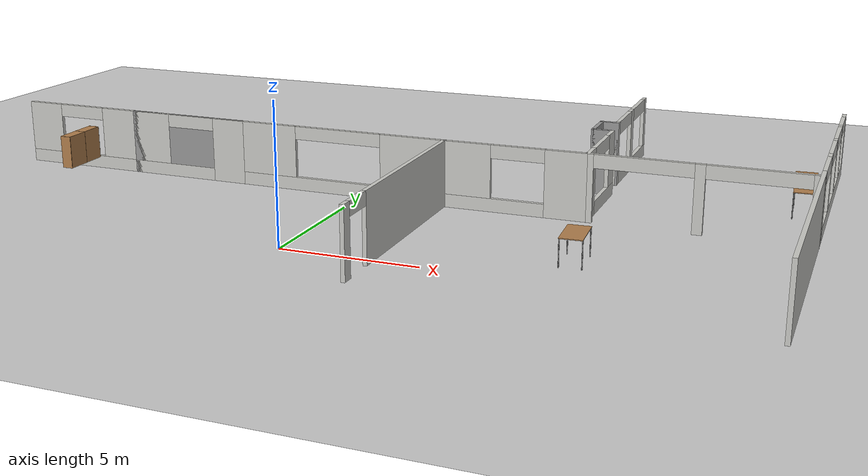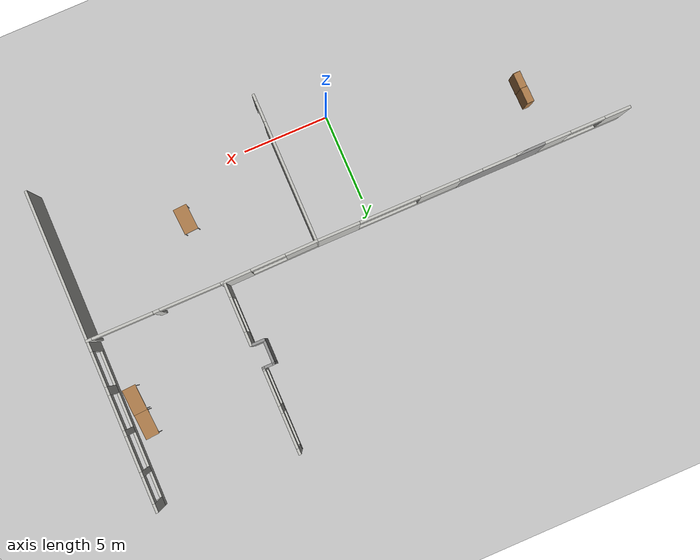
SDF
<sdf version="1.7">
 <world name="default">
  <model name="ground_plane">
   <static>1</static>
   <link name="link">
    <collision name="collision">
     <geometry><plane><normal>0 0 1</normal><size>100 100</size></plane></geometry>
     <surface><friction><ode><mu>100</mu><mu2>50</mu2></ode></friction></surface>
    </collision>
    <visual name="visual">
     <cast_shadows>0</cast_shadows>
     <geometry><plane><normal>0 0 1</normal><size>100 100</size></plane></geometry>
     <material>
      <script><uri>file://media/materials/scripts/gazebo.material</uri><name>Gazebo/Grey</name></script>
     </material>
    </visual>
   </link>
  </model>
  <model name="cps_lab_layout">
   <pose>-2.5615 -0.338224 0 0 -0 0</pose>
   <link name="Wall_187">
    <pose>11.2551 8.67058 0 0 -0 1.5708</pose>
    <visual name="Wall_187_Visual_0">
     <pose>-1.40582 0 1.25 0 -0 0</pose>
     <geometry><box><size>0.938352 0.15 2.5</size></box></geometry>
     <material>
      <script><uri>file://media/materials/scripts/gazebo.material</uri><name>Gazebo/CeilingTiled</name></script>
      <ambient>0.760784 0.662745 0.627451 1</ambient>
     </material>
     <meta><layer>0</layer></meta>
    </visual>
    <collision name="Wall_187_Collision_0">
     <geometry><box><size>0.938352 0.15 2.5</size></box></geometry>
     <pose>-1.40582 0 1.25 0 -0 0</pose>
    </collision>
    <visual name="Wall_187_Visual_1">
     <pose>0.469176 0 0.25 0 -0 0</pose>
     <geometry><box><size>2.81165 0.15 0.5</size></box></geometry>
     <material>
      <script><uri>file://media/materials/scripts/gazebo.material</uri><name>Gazebo/CeilingTiled</name></script>
      <ambient>0.760784 0.662745 0.627451 1</ambient>
     </material>
     <meta><layer>0</layer></meta>
    </visual>
    <collision name="Wall_187_Collision_1">
     <geometry><box><size>2.81165 0.15 0.5</size></box></geometry>
     <pose>0.469176 0 0.25 0 -0 0</pose>
    </collision>
    <visual name="Wall_187_Visual_2">
     <pose>1.46918 0 1.5 0 -0 0</pose>
     <geometry><box><size>0.811648 0.15 2</size></box></geometry>
     <material>
      <script><uri>file://media/materials/scripts/gazebo.material</uri><name>Gazebo/CeilingTiled</name></script>
      <ambient>0.760784 0.662745 0.627451 1</ambient>
     </material>
     <meta><layer>0</layer></meta>
    </visual>
    <collision name="Wall_187_Collision_2">
     <geometry><box><size>0.811648 0.15 2</size></box></geometry>
     <pose>1.46918 0 1.5 0 -0 0</pose>
    </collision>
    <visual name="Wall_187_Visual_3">
     <pose>0.063352 0 2.25 0 -0 0</pose>
     <geometry><box><size>2 0.15 0.5</size></box></geometry>
     <material>
      <script><uri>file://media/materials/scripts/gazebo.material</uri><name>Gazebo/CeilingTiled</name></script>
      <ambient>0.760784 0.662745 0.627451 1</ambient>
     </material>
     <meta><layer>0</layer></meta>
    </visual>
    <collision name="Wall_187_Collision_3">
     <geometry><box><size>2 0.15 0.5</size></box></geometry>
     <pose>0.063352 0 2.25 0 -0 0</pose>
    </collision>
   </link>
   <link name="Wall_189">
    <pose>19.097 7.40162 0 0 -0 1.56605</pose>
    <visual name="Wall_189_Visual_0">
     <pose>-4.54614 0 1.25 0 -0 0</pose>
     <geometry><box><size>9.29104 0.15 2.5</size></box></geometry>
     <material>
      <script><uri>file://media/materials/scripts/gazebo.material</uri><name>Gazebo/CeilingTiled</name></script>
      <ambient>0.760784 0.662745 0.627451 1</ambient>
     </material>
     <meta><layer>0</layer></meta>
    </visual>
    <collision name="Wall_189_Collision_0">
     <geometry><box><size>9.29104 0.15 2.5</size></box></geometry>
     <pose>-4.54614 0 1.25 0 -0 0</pose>
    </collision>
    <visual name="Wall_189_Visual_1">
     <pose>4.64552 0 0.25 0 -0 0</pose>
     <geometry><box><size>9.09228 0.15 0.5</size></box></geometry>
     <material>
      <script><uri>file://media/materials/scripts/gazebo.material</uri><name>Gazebo/CeilingTiled</name></script>
      <ambient>0.760784 0.662745 0.627451 1</ambient>
     </material>
     <meta><layer>0</layer></meta>
    </visual>
    <collision name="Wall_189_Collision_1">
     <geometry><box><size>9.09228 0.15 0.5</size></box></geometry>
     <pose>4.64552 0 0.25 0 -0 0</pose>
    </collision>
    <visual name="Wall_189_Visual_2">
     <pose>2.33247 0 1.5 0 -0 0</pose>
     <geometry><box><size>0.466181 0.15 2</size></box></geometry>
     <material>
      <script><uri>file://media/materials/scripts/gazebo.material</uri><name>Gazebo/CeilingTiled</name></script>
      <ambient>0.760784 0.662745 0.627451 1</ambient>
     </material>
     <meta><layer>0</layer></meta>
    </visual>
    <collision name="Wall_189_Collision_2">
     <geometry><box><size>0.466181 0.15 2</size></box></geometry>
     <pose>2.33247 0 1.5 0 -0 0</pose>
    </collision>
    <visual name="Wall_189_Visual_3">
     <pose>4.72865 0 1.5 0 -0 0</pose>
     <geometry><box><size>0.32617 0.15 2</size></box></geometry>
     <material>
      <script><uri>file://media/materials/scripts/gazebo.material</uri><name>Gazebo/CeilingTiled</name></script>
      <ambient>0.760784 0.662745 0.627451 1</ambient>
     </material>
     <meta><layer>0</layer></meta>
    </visual>
    <collision name="Wall_189_Collision_3">
     <geometry><box><size>0.32617 0.15 2</size></box></geometry>
     <pose>4.72865 0 1.5 0 -0 0</pose>
    </collision>
    <visual name="Wall_189_Visual_4">
     <pose>7.04047 0 1.5 0 -0 0</pose>
     <geometry><box><size>0.29747 0.15 2</size></box></geometry>
     <material>
      <script><uri>file://media/materials/scripts/gazebo.material</uri><name>Gazebo/CeilingTiled</name></script>
      <ambient>0.760784 0.662745 0.627451 1</ambient>
     </material>
     <meta><layer>0</layer></meta>
    </visual>
    <collision name="Wall_189_Collision_4">
     <geometry><box><size>0.29747 0.15 2</size></box></geometry>
     <pose>7.04047 0 1.5 0 -0 0</pose>
    </collision>
    <visual name="Wall_189_Visual_5">
     <pose>8.94043 0 1.5 0 -0 0</pose>
     <geometry><box><size>0.502461 0.15 2</size></box></geometry>
     <material>
      <script><uri>file://media/materials/scripts/gazebo.material</uri><name>Gazebo/CeilingTiled</name></script>
      <ambient>0.760784 0.662745 0.627451 1</ambient>
     </material>
     <meta><layer>0</layer></meta>
    </visual>
    <collision name="Wall_189_Collision_5">
     <geometry><box><size>0.502461 0.15 2</size></box></geometry>
     <pose>8.94043 0 1.5 0 -0 0</pose>
    </collision>
    <visual name="Wall_189_Visual_6">
     <pose>1.09938 0 2.25 0 -0 0</pose>
     <geometry><box><size>2 0.15 0.5</size></box></geometry>
     <material>
      <script><uri>file://media/materials/scripts/gazebo.material</uri><name>Gazebo/CeilingTiled</name></script>
      <ambient>0.760784 0.662745 0.627451 1</ambient>
     </material>
     <meta><layer>0</layer></meta>
    </visual>
    <collision name="Wall_189_Collision_6">
     <geometry><box><size>2 0.15 0.5</size></box></geometry>
     <pose>1.09938 0 2.25 0 -0 0</pose>
    </collision>
    <visual name="Wall_189_Visual_7">
     <pose>3.56556 0 2.25 0 -0 0</pose>
     <geometry><box><size>2 0.15 0.5</size></box></geometry>
     <material>
      <script><uri>file://media/materials/scripts/gazebo.material</uri><name>Gazebo/CeilingTiled</name></script>
      <ambient>0.760784 0.662745 0.627451 1</ambient>
     </material>
     <meta><layer>0</layer></meta>
    </visual>
    <collision name="Wall_189_Collision_7">
     <geometry><box><size>2 0.15 0.5</size></box></geometry>
     <pose>3.56556 0 2.25 0 -0 0</pose>
    </collision>
    <visual name="Wall_189_Visual_8">
     <pose>5.89173 0 2.25 0 -0 0</pose>
     <geometry><box><size>2 0.15 0.5</size></box></geometry>
     <material>
      <script><uri>file://media/materials/scripts/gazebo.material</uri><name>Gazebo/CeilingTiled</name></script>
      <ambient>0.760784 0.662745 0.627451 1</ambient>
     </material>
     <meta><layer>0</layer></meta>
    </visual>
    <collision name="Wall_189_Collision_8">
     <geometry><box><size>2 0.15 0.5</size></box></geometry>
     <pose>5.89173 0 2.25 0 -0 0</pose>
    </collision>
    <visual name="Wall_189_Visual_9">
     <pose>7.9392 0 2.25 0 -0 0</pose>
     <geometry><box><size>1.5 0.15 0.5</size></box></geometry>
     <material>
      <script><uri>file://media/materials/scripts/gazebo.material</uri><name>Gazebo/CeilingTiled</name></script>
      <ambient>0.760784 0.662745 0.627451 1</ambient>
     </material>
     <meta><layer>0</layer></meta>
    </visual>
    <collision name="Wall_189_Collision_9">
     <geometry><box><size>1.5 0.15 0.5</size></box></geometry>
     <pose>7.9392 0 2.25 0 -0 0</pose>
    </collision>
   </link>
   <link name="Wall_193">
    <pose>15.1801 6.87058 0 0 -0 0</pose>
    <visual name="Wall_193_Visual_0">
     <pose>-3.85613 0 1.25 0 -0 0</pose>
     <geometry><box><size>0.287735 0.15 2.5</size></box></geometry>
     <material>
      <script><uri>file://media/materials/scripts/gazebo.material</uri><name>Gazebo/CeilingTiled</name></script>
      <ambient>0.760784 0.662745 0.627451 1</ambient>
     </material>
     <meta><layer>0</layer></meta>
    </visual>
    <collision name="Wall_193_Collision_0">
     <geometry><box><size>0.287735 0.15 2.5</size></box></geometry>
     <pose>-3.85613 0 1.25 0 -0 0</pose>
    </collision>
    <visual name="Wall_193_Visual_1">
     <pose>-0.031522 0 1.25 0 -0 0</pose>
     <geometry><box><size>0.361485 0.15 2.5</size></box></geometry>
     <material>
      <script><uri>file://media/materials/scripts/gazebo.material</uri><name>Gazebo/CeilingTiled</name></script>
      <ambient>0.760784 0.662745 0.627451 1</ambient>
     </material>
     <meta><layer>0</layer></meta>
    </visual>
    <collision name="Wall_193_Collision_1">
     <geometry><box><size>0.361485 0.15 2.5</size></box></geometry>
     <pose>-0.031522 0 1.25 0 -0 0</pose>
    </collision>
    <visual name="Wall_193_Visual_2">
     <pose>3.82461 0 1.25 0 -0 0</pose>
     <geometry><box><size>0.35078 0.15 2.5</size></box></geometry>
     <material>
      <script><uri>file://media/materials/scripts/gazebo.material</uri><name>Gazebo/CeilingTiled</name></script>
      <ambient>0.760784 0.662745 0.627451 1</ambient>
     </material>
     <meta><layer>0</layer></meta>
    </visual>
    <collision name="Wall_193_Collision_2">
     <geometry><box><size>0.35078 0.15 2.5</size></box></geometry>
     <pose>3.82461 0 1.25 0 -0 0</pose>
    </collision>
    <visual name="Wall_193_Visual_3">
     <pose>-1.96226 0 2.25 0 -0 0</pose>
     <geometry><box><size>3.5 0.15 0.5</size></box></geometry>
     <material>
      <script><uri>file://media/materials/scripts/gazebo.material</uri><name>Gazebo/CeilingTiled</name></script>
      <ambient>0.760784 0.662745 0.627451 1</ambient>
     </material>
     <meta><layer>0</layer></meta>
    </visual>
    <collision name="Wall_193_Collision_3">
     <geometry><box><size>3.5 0.15 0.5</size></box></geometry>
     <pose>-1.96226 0 2.25 0 -0 0</pose>
    </collision>
    <visual name="Wall_193_Visual_4">
     <pose>1.89922 0 2.25 0 -0 0</pose>
     <geometry><box><size>3.5 0.15 0.5</size></box></geometry>
     <material>
      <script><uri>file://media/materials/scripts/gazebo.material</uri><name>Gazebo/CeilingTiled</name></script>
      <ambient>0.760784 0.662745 0.627451 1</ambient>
     </material>
     <meta><layer>0</layer></meta>
    </visual>
    <collision name="Wall_193_Collision_4">
     <geometry><box><size>3.5 0.15 0.5</size></box></geometry>
     <pose>1.89922 0 2.25 0 -0 0</pose>
    </collision>
   </link>
   <link name="Wall_197">
    <collision name="Wall_197_Collision">
     <geometry><box><size>0.75 0.15 2.5</size></box></geometry>
     <pose>0 0 1.25 0 -0 0</pose>
    </collision>
    <visual name="Wall_197_Visual">
     <pose>0 0 1.25 0 -0 0</pose>
     <geometry><box><size>0.75 0.15 2.5</size></box></geometry>
     <material>
      <script><uri>file://media/materials/scripts/gazebo.material</uri><name>Gazebo/Grey</name></script>
      <ambient>1 1 1 1</ambient>
     </material>
     <meta><layer>0</layer></meta>
    </visual>
    <pose>10.8242 11.851 0 0 -0 3.14159</pose>
   </link>
   <link name="Wall_198">
    <collision name="Wall_198_Collision">
     <geometry><box><size>1.5 0.15 2.5</size></box></geometry>
     <pose>0 0 1.25 0 -0 0</pose>
    </collision>
    <visual name="Wall_198_Visual">
     <pose>0 0 1.25 0 -0 0</pose>
     <geometry><box><size>1.5 0.15 2.5</size></box></geometry>
     <material>
      <script><uri>file://media/materials/scripts/gazebo.material</uri><name>Gazebo/Grey</name></script>
      <ambient>1 1 1 1</ambient>
     </material>
     <meta><layer>0</layer></meta>
    </visual>
    <pose>10.5242 11.176 0 0 -0 -1.5708</pose>
   </link>
   <link name="Wall_199">
    <collision name="Wall_199_Collision">
     <geometry><box><size>0.75 0.15 2.5</size></box></geometry>
     <pose>0 0 1.25 0 -0 0</pose>
    </collision>
    <visual name="Wall_199_Visual">
     <pose>0 0 1.25 0 -0 0</pose>
     <geometry><box><size>0.75 0.15 2.5</size></box></geometry>
     <material>
      <script><uri>file://media/materials/scripts/gazebo.material</uri><name>Gazebo/Grey</name></script>
      <ambient>1 1 1 1</ambient>
     </material>
     <meta><layer>0</layer></meta>
    </visual>
    <pose>10.8242 10.501 0 0 -0 0</pose>
   </link>
   <link name="Wall_201">
    <pose>11.1242 14.276 0 0 -0 1.5708</pose>
    <visual name="Wall_201_Visual_0">
     <pose>-2.38095 0 1.25 0 -0 0</pose>
     <geometry><box><size>0.238098 0.15 2.5</size></box></geometry>
     <material>
      <script><uri>file://media/materials/scripts/gazebo.material</uri><name>Gazebo/CeilingTiled</name></script>
      <ambient>0.760784 0.662745 0.627451 1</ambient>
     </material>
     <meta><layer>0</layer></meta>
    </visual>
    <collision name="Wall_201_Collision_0">
     <geometry><box><size>0.238098 0.15 2.5</size></box></geometry>
     <pose>-2.38095 0 1.25 0 -0 0</pose>
    </collision>
    <visual name="Wall_201_Visual_1">
     <pose>0.119049 0 0.25 0 -0 0</pose>
     <geometry><box><size>4.7619 0.15 0.5</size></box></geometry>
     <material>
      <script><uri>file://media/materials/scripts/gazebo.material</uri><name>Gazebo/CeilingTiled</name></script>
      <ambient>0.760784 0.662745 0.627451 1</ambient>
     </material>
     <meta><layer>0</layer></meta>
    </visual>
    <collision name="Wall_201_Collision_1">
     <geometry><box><size>4.7619 0.15 0.5</size></box></geometry>
     <pose>0.119049 0 0.25 0 -0 0</pose>
    </collision>
    <visual name="Wall_201_Visual_2">
     <pose>-0.05228 0 1.5 0 -0 0</pose>
     <geometry><box><size>0.419243 0.15 2</size></box></geometry>
     <material>
      <script><uri>file://media/materials/scripts/gazebo.material</uri><name>Gazebo/CeilingTiled</name></script>
      <ambient>0.760784 0.662745 0.627451 1</ambient>
     </material>
     <meta><layer>0</layer></meta>
    </visual>
    <collision name="Wall_201_Collision_2">
     <geometry><box><size>0.419243 0.15 2</size></box></geometry>
     <pose>-0.05228 0 1.5 0 -0 0</pose>
    </collision>
    <visual name="Wall_201_Visual_3">
     <pose>2.32867 0 1.5 0 -0 0</pose>
     <geometry><box><size>0.342659 0.15 2</size></box></geometry>
     <material>
      <script><uri>file://media/materials/scripts/gazebo.material</uri><name>Gazebo/CeilingTiled</name></script>
      <ambient>0.760784 0.662745 0.627451 1</ambient>
     </material>
     <meta><layer>0</layer></meta>
    </visual>
    <collision name="Wall_201_Collision_3">
     <geometry><box><size>0.342659 0.15 2</size></box></geometry>
     <pose>2.32867 0 1.5 0 -0 0</pose>
    </collision>
    <visual name="Wall_201_Visual_4">
     <pose>-1.2619 0 2.25 0 -0 0</pose>
     <geometry><box><size>2 0.15 0.5</size></box></geometry>
     <material>
      <script><uri>file://media/materials/scripts/gazebo.material</uri><name>Gazebo/CeilingTiled</name></script>
      <ambient>0.760784 0.662745 0.627451 1</ambient>
     </material>
     <meta><layer>0</layer></meta>
    </visual>
    <collision name="Wall_201_Collision_4">
     <geometry><box><size>2 0.15 0.5</size></box></geometry>
     <pose>-1.2619 0 2.25 0 -0 0</pose>
    </collision>
    <visual name="Wall_201_Visual_5">
     <pose>1.15734 0 2.25 0 -0 0</pose>
     <geometry><box><size>2 0.15 0.5</size></box></geometry>
     <material>
      <script><uri>file://media/materials/scripts/gazebo.material</uri><name>Gazebo/CeilingTiled</name></script>
      <ambient>0.760784 0.662745 0.627451 1</ambient>
     </material>
     <meta><layer>0</layer></meta>
    </visual>
    <collision name="Wall_201_Collision_5">
     <geometry><box><size>2 0.15 0.5</size></box></geometry>
     <pose>1.15734 0 2.25 0 -0 0</pose>
    </collision>
   </link>
   <link name="Wall_92">
    <pose>8.58008 6.8354 0 0 -0 -3.12844</pose>
    <visual name="Wall_92_Visual_0">
     <pose>-1.94421 0 1.25 0 -0 0</pose>
     <geometry><box><size>1.61204 0.15 2.5</size></box></geometry>
     <material>
      <script><uri>file://media/materials/scripts/gazebo.material</uri><name>Gazebo/CeilingTiled</name></script>
      <ambient>0.760784 0.662745 0.627451 1</ambient>
     </material>
     <meta><layer>0</layer></meta>
    </visual>
    <collision name="Wall_92_Collision_0">
     <geometry><box><size>1.61204 0.15 2.5</size></box></geometry>
     <pose>-1.94421 0 1.25 0 -0 0</pose>
    </collision>
    <visual name="Wall_92_Visual_1">
     <pose>0.806018 0 0.25 0 -0 0</pose>
     <geometry><box><size>3.88843 0.15 0.5</size></box></geometry>
     <material>
      <script><uri>file://media/materials/scripts/gazebo.material</uri><name>Gazebo/CeilingTiled</name></script>
      <ambient>0.760784 0.662745 0.627451 1</ambient>
     </material>
     <meta><layer>0</layer></meta>
    </visual>
    <collision name="Wall_92_Collision_1">
     <geometry><box><size>3.88843 0.15 0.5</size></box></geometry>
     <pose>0.806018 0 0.25 0 -0 0</pose>
    </collision>
    <visual name="Wall_92_Visual_2">
     <pose>1.80602 0 1.5 0 -0 0</pose>
     <geometry><box><size>1.88843 0.15 2</size></box></geometry>
     <material>
      <script><uri>file://media/materials/scripts/gazebo.material</uri><name>Gazebo/CeilingTiled</name></script>
      <ambient>0.760784 0.662745 0.627451 1</ambient>
     </material>
     <meta><layer>0</layer></meta>
    </visual>
    <collision name="Wall_92_Collision_2">
     <geometry><box><size>1.88843 0.15 2</size></box></geometry>
     <pose>1.80602 0 1.5 0 -0 0</pose>
    </collision>
    <visual name="Wall_92_Visual_3">
     <pose>-0.138195 0 2.25 0 -0 0</pose>
     <geometry><box><size>2 0.15 0.5</size></box></geometry>
     <material>
      <script><uri>file://media/materials/scripts/gazebo.material</uri><name>Gazebo/CeilingTiled</name></script>
      <ambient>0.760784 0.662745 0.627451 1</ambient>
     </material>
     <meta><layer>0</layer></meta>
    </visual>
    <collision name="Wall_92_Collision_3">
     <geometry><box><size>2 0.15 0.5</size></box></geometry>
     <pose>-0.138195 0 2.25 0 -0 0</pose>
    </collision>
   </link>
   <link name="Wall_93">
    <pose>5.90508 2.5354 0 0 -0 -1.5708</pose>
    <visual name="Wall_93_Visual_0">
     <pose>-0.808442 0 1.25 0 -0 0</pose>
     <geometry><box><size>7.06276 0.15 2.5</size></box></geometry>
     <material>
      <script><uri>file://media/materials/scripts/gazebo.material</uri><name>Gazebo/CeilingTiled</name></script>
      <ambient>0.760784 0.662745 0.627451 1</ambient>
     </material>
     <meta><layer>0</layer></meta>
    </visual>
    <collision name="Wall_93_Collision_0">
     <geometry><box><size>7.06276 0.15 2.5</size></box></geometry>
     <pose>-0.808442 0 1.25 0 -0 0</pose>
    </collision>
    <visual name="Wall_93_Visual_1">
     <pose>4.13138 0 1.25 0 -0 0</pose>
     <geometry><box><size>0.416883 0.15 2.5</size></box></geometry>
     <material>
      <script><uri>file://media/materials/scripts/gazebo.material</uri><name>Gazebo/CeilingTiled</name></script>
      <ambient>0.760784 0.662745 0.627451 1</ambient>
     </material>
     <meta><layer>0</layer></meta>
    </visual>
    <collision name="Wall_93_Collision_1">
     <geometry><box><size>0.416883 0.15 2.5</size></box></geometry>
     <pose>4.13138 0 1.25 0 -0 0</pose>
    </collision>
    <visual name="Wall_93_Visual_2">
     <pose>3.32294 0 2.25 0 -0 0</pose>
     <geometry><box><size>1.2 0.15 0.5</size></box></geometry>
     <material>
      <script><uri>file://media/materials/scripts/gazebo.material</uri><name>Gazebo/CeilingTiled</name></script>
      <ambient>0.760784 0.662745 0.627451 1</ambient>
     </material>
     <meta><layer>0</layer></meta>
    </visual>
    <collision name="Wall_93_Collision_2">
     <geometry><box><size>1.2 0.15 0.5</size></box></geometry>
     <pose>3.32294 0 2.25 0 -0 0</pose>
    </collision>
   </link>
   <link name="Wall_94">
    <pose>1.73008 6.80022 0 0 -0 3.14159</pose>
    <visual name="Wall_94_Visual_0">
     <pose>-2.95787 0 1.25 0 -0 0</pose>
     <geometry><box><size>2.58426 0.15 2.5</size></box></geometry>
     <material>
      <script><uri>file://media/materials/scripts/gazebo.material</uri><name>Gazebo/CeilingTiled</name></script>
      <ambient>0.760784 0.662745 0.627451 1</ambient>
     </material>
     <meta><layer>0</layer></meta>
    </visual>
    <collision name="Wall_94_Collision_0">
     <geometry><box><size>2.58426 0.15 2.5</size></box></geometry>
     <pose>-2.95787 0 1.25 0 -0 0</pose>
    </collision>
    <visual name="Wall_94_Visual_1">
     <pose>1.29213 0 0.25 0 -0 0</pose>
     <geometry><box><size>5.91574 0.15 0.5</size></box></geometry>
     <material>
      <script><uri>file://media/materials/scripts/gazebo.material</uri><name>Gazebo/CeilingTiled</name></script>
      <ambient>0.760784 0.662745 0.627451 1</ambient>
     </material>
     <meta><layer>0</layer></meta>
    </visual>
    <collision name="Wall_94_Collision_1">
     <geometry><box><size>5.91574 0.15 0.5</size></box></geometry>
     <pose>1.29213 0 0.25 0 -0 0</pose>
    </collision>
    <visual name="Wall_94_Visual_2">
     <pose>3.04213 0 1.5 0 -0 0</pose>
     <geometry><box><size>2.41574 0.15 2</size></box></geometry>
     <material>
      <script><uri>file://media/materials/scripts/gazebo.material</uri><name>Gazebo/CeilingTiled</name></script>
      <ambient>0.760784 0.662745 0.627451 1</ambient>
     </material>
     <meta><layer>0</layer></meta>
    </visual>
    <collision name="Wall_94_Collision_2">
     <geometry><box><size>2.41574 0.15 2</size></box></geometry>
     <pose>3.04213 0 1.5 0 -0 0</pose>
    </collision>
    <visual name="Wall_94_Visual_3">
     <pose>0.084257 0 2.25 0 -0 0</pose>
     <geometry><box><size>3.5 0.15 0.5</size></box></geometry>
     <material>
      <script><uri>file://media/materials/scripts/gazebo.material</uri><name>Gazebo/CeilingTiled</name></script>
      <ambient>0.760784 0.662745 0.627451 1</ambient>
     </material>
     <meta><layer>0</layer></meta>
    </visual>
    <collision name="Wall_94_Collision_3">
     <geometry><box><size>3.5 0.15 0.5</size></box></geometry>
     <pose>0.084257 0 2.25 0 -0 0</pose>
    </collision>
   </link>
   <link name="Wall_98">
    <collision name="Wall_98_Collision">
     <geometry><box><size>5 0.15 2.5</size></box></geometry>
     <pose>0 0 1.25 0 -0 0</pose>
    </collision>
    <visual name="Wall_98_Visual">
     <pose>0 0 1.25 0 -0 0</pose>
     <geometry><box><size>5 0.15 2.5</size></box></geometry>
     <material>
      <script><uri>file://media/materials/scripts/gazebo.material</uri><name>Gazebo/Grey</name></script>
      <ambient>1 1 1 1</ambient>
     </material>
     <meta><layer>0</layer></meta>
    </visual>
    <pose>-4.86992 6.80022 0 0 -0 0</pose>
   </link>
   <link name="Wall_99">
    <pose>-7.36992 6.80022 0 0 -0 3.14159</pose>
    <visual name="Wall_99_Visual_0">
     <pose>-4.32419 0 1.25 0 -0 0</pose>
     <geometry><box><size>1.35161 0.15 2.5</size></box></geometry>
     <material>
      <script><uri>file://media/materials/scripts/gazebo.material</uri><name>Gazebo/CeilingTiled</name></script>
      <ambient>0.760784 0.662745 0.627451 1</ambient>
     </material>
     <meta><layer>0</layer></meta>
    </visual>
    <collision name="Wall_99_Collision_0">
     <geometry><box><size>1.35161 0.15 2.5</size></box></geometry>
     <pose>-4.32419 0 1.25 0 -0 0</pose>
    </collision>
    <visual name="Wall_99_Visual_1">
     <pose>0.675807 0 0.25 0 -0 0</pose>
     <geometry><box><size>8.64839 0.15 0.5</size></box></geometry>
     <material>
      <script><uri>file://media/materials/scripts/gazebo.material</uri><name>Gazebo/CeilingTiled</name></script>
      <ambient>0.760784 0.662745 0.627451 1</ambient>
     </material>
     <meta><layer>0</layer></meta>
    </visual>
    <collision name="Wall_99_Collision_1">
     <geometry><box><size>8.64839 0.15 0.5</size></box></geometry>
     <pose>0.675807 0 0.25 0 -0 0</pose>
    </collision>
    <visual name="Wall_99_Visual_2">
     <pose>-0.080337 0 1.5 0 -0 0</pose>
     <geometry><box><size>3.1361 0.15 2</size></box></geometry>
     <material>
      <script><uri>file://media/materials/scripts/gazebo.material</uri><name>Gazebo/CeilingTiled</name></script>
      <ambient>0.760784 0.662745 0.627451 1</ambient>
     </material>
     <meta><layer>0</layer></meta>
    </visual>
    <collision name="Wall_99_Collision_2">
     <geometry><box><size>3.1361 0.15 2</size></box></geometry>
     <pose>-0.080337 0 1.5 0 -0 0</pose>
    </collision>
    <visual name="Wall_99_Visual_3">
     <pose>4.24386 0 1.5 0 -0 0</pose>
     <geometry><box><size>1.51229 0.15 2</size></box></geometry>
     <material>
      <script><uri>file://media/materials/scripts/gazebo.material</uri><name>Gazebo/CeilingTiled</name></script>
      <ambient>0.760784 0.662745 0.627451 1</ambient>
     </material>
     <meta><layer>0</layer></meta>
    </visual>
    <collision name="Wall_99_Collision_3">
     <geometry><box><size>1.51229 0.15 2</size></box></geometry>
     <pose>4.24386 0 1.5 0 -0 0</pose>
    </collision>
    <visual name="Wall_99_Visual_4">
     <pose>-2.64839 0 2.25 0 -0 0</pose>
     <geometry><box><size>2 0.15 0.5</size></box></geometry>
     <material>
      <script><uri>file://media/materials/scripts/gazebo.material</uri><name>Gazebo/CeilingTiled</name></script>
      <ambient>0.760784 0.662745 0.627451 1</ambient>
     </material>
     <meta><layer>0</layer></meta>
    </visual>
    <collision name="Wall_99_Collision_4">
     <geometry><box><size>2 0.15 0.5</size></box></geometry>
     <pose>-2.64839 0 2.25 0 -0 0</pose>
    </collision>
    <visual name="Wall_99_Visual_5">
     <pose>2.48771 0 2.25 0 -0 0</pose>
     <geometry><box><size>2 0.15 0.5</size></box></geometry>
     <material>
      <script><uri>file://media/materials/scripts/gazebo.material</uri><name>Gazebo/CeilingTiled</name></script>
      <ambient>0.760784 0.662745 0.627451 1</ambient>
     </material>
     <meta><layer>0</layer></meta>
    </visual>
    <collision name="Wall_99_Collision_5">
     <geometry><box><size>2 0.15 0.5</size></box></geometry>
     <pose>2.48771 0 2.25 0 -0 0</pose>
    </collision>
   </link>
   <static>1</static>
  </model>
  <model name="Bookshelf_0_clone_clone_4_clone_clone_3_clone">
   <static>1</static>
   <link name="link">
    <inertial><mass>1</mass></inertial>
    <collision name="back">
     <pose>0 0.005 0.6 0 -0 0</pose>
     <geometry><box><size>0.9 0.01 1.2</size></box></geometry>
    </collision>
    <visual name="visual1">
     <pose>0 0.005 0.6 0 -0 0</pose>
     <geometry><box><size>0.9 0.01 1.2</size></box></geometry>
     <material>
      <diffuse>1 1 1 1</diffuse>
      <script><uri>file://media/materials/scripts/gazebo.material</uri><name>Gazebo/Wood</name></script>
      <pbr>
       <metal>
        <albedo_map>https://fuel.gazebosim.org/1.0/openrobotics/models/bookshelf/4/files/bookshelf_diffuse.jpg</albedo_map>
       </metal>
      </pbr>
     </material>
    </visual>
    <collision name="left_side">
     <pose>0.45 -0.195 0.6 0 -0 0</pose>
     <geometry><box><size>0.02 0.4 1.2</size></box></geometry>
    </collision>
    <visual name="visual2">
     <pose>0.45 -0.195 0.6 0 -0 0</pose>
     <geometry><box><size>0.02 0.4 1.2</size></box></geometry>
     <material>
      <diffuse>1 1 1 1</diffuse>
      <script><uri>file://media/materials/scripts/gazebo.material</uri><name>Gazebo/Wood</name></script>
      <pbr>
       <metal>
        <albedo_map>https://fuel.gazebosim.org/1.0/openrobotics/models/bookshelf/4/files/bookshelf_diffuse.jpg</albedo_map>
       </metal>
      </pbr>
     </material>
    </visual>
    <collision name="right_side">
     <pose>-0.45 -0.195 0.6 0 -0 0</pose>
     <geometry><box><size>0.02 0.4 1.2</size></box></geometry>
    </collision>
    <visual name="visual3">
     <pose>-0.45 -0.195 0.6 0 -0 0</pose>
     <geometry><box><size>0.02 0.4 1.2</size></box></geometry>
     <material>
      <diffuse>1 1 1 1</diffuse>
      <script><uri>file://media/materials/scripts/gazebo.material</uri><name>Gazebo/Wood</name></script>
      <pbr>
       <metal>
        <albedo_map>https://fuel.gazebosim.org/1.0/openrobotics/models/bookshelf/4/files/bookshelf_diffuse.jpg</albedo_map>
       </metal>
      </pbr>
     </material>
    </visual>
    <collision name="bottom">
     <pose>0 -0.195 0.03 0 -0 0</pose>
     <geometry><box><size>0.88 0.4 0.06</size></box></geometry>
    </collision>
    <visual name="visual4">
     <pose>0 -0.195 0.03 0 -0 0</pose>
     <geometry><box><size>0.88 0.4 0.06</size></box></geometry>
     <material>
      <diffuse>1 1 1 1</diffuse>
      <script><uri>file://media/materials/scripts/gazebo.material</uri><name>Gazebo/Wood</name></script>
      <pbr>
       <metal>
        <albedo_map>https://fuel.gazebosim.org/1.0/openrobotics/models/bookshelf/4/files/bookshelf_diffuse.jpg</albedo_map>
       </metal>
      </pbr>
     </material>
    </visual>
    <collision name="top">
     <pose>0 -0.195 1.19 0 -0 0</pose>
     <geometry><box><size>0.88 0.4 0.02</size></box></geometry>
    </collision>
    <visual name="visual5">
     <pose>0 -0.195 1.19 0 -0 0</pose>
     <geometry><box><size>0.88 0.4 0.02</size></box></geometry>
     <material>
      <diffuse>1 1 1 1</diffuse>
      <script><uri>file://media/materials/scripts/gazebo.material</uri><name>Gazebo/Wood</name></script>
      <pbr>
       <metal>
        <albedo_map>https://fuel.gazebosim.org/1.0/openrobotics/models/bookshelf/4/files/bookshelf_diffuse.jpg</albedo_map>
       </metal>
      </pbr>
     </material>
    </visual>
    <collision name="low_shelf">
     <pose>0 -0.195 0.43 0 -0 0</pose>
     <geometry><box><size>0.88 0.4 0.02</size></box></geometry>
    </collision>
    <visual name="visual6">
     <pose>0 -0.195 0.43 0 -0 0</pose>
     <geometry><box><size>0.88 0.4 0.02</size></box></geometry>
     <material>
      <diffuse>1 1 1 1</diffuse>
      <script><uri>file://media/materials/scripts/gazebo.material</uri><name>Gazebo/Wood</name></script>
      <pbr>
       <metal>
        <albedo_map>https://fuel.gazebosim.org/1.0/openrobotics/models/bookshelf/4/files/bookshelf_diffuse.jpg</albedo_map>
       </metal>
      </pbr>
     </material>
    </visual>
    <collision name="high_shelf">
     <pose>0 -0.195 0.8 0 -0 0</pose>
     <geometry><box><size>0.88 0.4 0.02</size></box></geometry>
    </collision>
    <visual name="visual7">
     <pose>0 -0.195 0.8 0 -0 0</pose>
     <geometry><box><size>0.88 0.4 0.02</size></box></geometry>
     <material>
      <diffuse>1 1 1 1</diffuse>
      <script><uri>file://media/materials/scripts/gazebo.material</uri><name>Gazebo/Wood</name></script>
      <pbr>
       <metal>
        <albedo_map>https://fuel.gazebosim.org/1.0/openrobotics/models/bookshelf/4/files/bookshelf_diffuse.jpg</albedo_map>
       </metal>
      </pbr>
     </material>
    </visual>
   </link>
   <pose>-9.96183 3.67776 1.15542 0 0 -1.55424</pose>
  </model>
  <model name="Bookshelf_0_clone_clone_4_clone_clone_3_clone_0">
   <static>1</static>
   <link name="link">
    <inertial><mass>1</mass></inertial>
    <collision name="back">
     <pose>0 0.005 0.6 0 -0 0</pose>
     <geometry><box><size>0.9 0.01 1.2</size></box></geometry>
    </collision>
    <visual name="visual1">
     <pose>0 0.005 0.6 0 -0 0</pose>
     <geometry><box><size>0.9 0.01 1.2</size></box></geometry>
     <material>
      <diffuse>1 1 1 1</diffuse>
      <script><uri>file://media/materials/scripts/gazebo.material</uri><name>Gazebo/Wood</name></script>
      <pbr>
       <metal>
        <albedo_map>https://fuel.gazebosim.org/1.0/openrobotics/models/bookshelf/4/files/bookshelf_diffuse.jpg</albedo_map>
       </metal>
      </pbr>
     </material>
    </visual>
    <collision name="left_side">
     <pose>0.45 -0.195 0.6 0 -0 0</pose>
     <geometry><box><size>0.02 0.4 1.2</size></box></geometry>
    </collision>
    <visual name="visual2">
     <pose>0.45 -0.195 0.6 0 -0 0</pose>
     <geometry><box><size>0.02 0.4 1.2</size></box></geometry>
     <material>
      <diffuse>1 1 1 1</diffuse>
      <script><uri>file://media/materials/scripts/gazebo.material</uri><name>Gazebo/Wood</name></script>
      <pbr>
       <metal>
        <albedo_map>https://fuel.gazebosim.org/1.0/openrobotics/models/bookshelf/4/files/bookshelf_diffuse.jpg</albedo_map>
       </metal>
      </pbr>
     </material>
    </visual>
    <collision name="right_side">
     <pose>-0.45 -0.195 0.6 0 -0 0</pose>
     <geometry><box><size>0.02 0.4 1.2</size></box></geometry>
    </collision>
    <visual name="visual3">
     <pose>-0.45 -0.195 0.6 0 -0 0</pose>
     <geometry><box><size>0.02 0.4 1.2</size></box></geometry>
     <material>
      <diffuse>1 1 1 1</diffuse>
      <script><uri>file://media/materials/scripts/gazebo.material</uri><name>Gazebo/Wood</name></script>
      <pbr>
       <metal>
        <albedo_map>https://fuel.gazebosim.org/1.0/openrobotics/models/bookshelf/4/files/bookshelf_diffuse.jpg</albedo_map>
       </metal>
      </pbr>
     </material>
    </visual>
    <collision name="bottom">
     <pose>0 -0.195 0.03 0 -0 0</pose>
     <geometry><box><size>0.88 0.4 0.06</size></box></geometry>
    </collision>
    <visual name="visual4">
     <pose>0 -0.195 0.03 0 -0 0</pose>
     <geometry><box><size>0.88 0.4 0.06</size></box></geometry>
     <material>
      <diffuse>1 1 1 1</diffuse>
      <script><uri>file://media/materials/scripts/gazebo.material</uri><name>Gazebo/Wood</name></script>
      <pbr>
       <metal>
        <albedo_map>https://fuel.gazebosim.org/1.0/openrobotics/models/bookshelf/4/files/bookshelf_diffuse.jpg</albedo_map>
       </metal>
      </pbr>
     </material>
    </visual>
    <collision name="top">
     <pose>0 -0.195 1.19 0 -0 0</pose>
     <geometry><box><size>0.88 0.4 0.02</size></box></geometry>
    </collision>
    <visual name="visual5">
     <pose>0 -0.195 1.19 0 -0 0</pose>
     <geometry><box><size>0.88 0.4 0.02</size></box></geometry>
     <material>
      <diffuse>1 1 1 1</diffuse>
      <script><uri>file://media/materials/scripts/gazebo.material</uri><name>Gazebo/Wood</name></script>
      <pbr>
       <metal>
        <albedo_map>https://fuel.gazebosim.org/1.0/openrobotics/models/bookshelf/4/files/bookshelf_diffuse.jpg</albedo_map>
       </metal>
      </pbr>
     </material>
    </visual>
    <collision name="low_shelf">
     <pose>0 -0.195 0.43 0 -0 0</pose>
     <geometry><box><size>0.88 0.4 0.02</size></box></geometry>
    </collision>
    <visual name="visual6">
     <pose>0 -0.195 0.43 0 -0 0</pose>
     <geometry><box><size>0.88 0.4 0.02</size></box></geometry>
     <material>
      <diffuse>1 1 1 1</diffuse>
      <script><uri>file://media/materials/scripts/gazebo.material</uri><name>Gazebo/Wood</name></script>
      <pbr>
       <metal>
        <albedo_map>https://fuel.gazebosim.org/1.0/openrobotics/models/bookshelf/4/files/bookshelf_diffuse.jpg</albedo_map>
       </metal>
      </pbr>
     </material>
    </visual>
    <collision name="high_shelf">
     <pose>0 -0.195 0.8 0 -0 0</pose>
     <geometry><box><size>0.88 0.4 0.02</size></box></geometry>
    </collision>
    <visual name="visual7">
     <pose>0 -0.195 0.8 0 -0 0</pose>
     <geometry><box><size>0.88 0.4 0.02</size></box></geometry>
     <material>
      <diffuse>1 1 1 1</diffuse>
      <script><uri>file://media/materials/scripts/gazebo.material</uri><name>Gazebo/Wood</name></script>
      <pbr>
       <metal>
        <albedo_map>https://fuel.gazebosim.org/1.0/openrobotics/models/bookshelf/4/files/bookshelf_diffuse.jpg</albedo_map>
       </metal>
      </pbr>
     </material>
    </visual>
   </link>
   <pose>-9.93301 2.78922 1.15542 0 0 -1.55424</pose>
  </model>
  <model name="Table_clone_0_clone_clone_clone">
   <static>1</static>
   <link name="link">
    <collision name="surface">
     <pose>0 0 1 0 -0 0</pose>
     <geometry><box><size>1.5 0.8 0.03</size></box></geometry>
     <surface><friction><ode><mu>0.6</mu><mu2>0.6</mu2></ode></friction></surface>
    </collision>
    <visual name="visual1">
     <pose>0 0 1 0 -0 0</pose>
     <geometry><box><size>1.5 0.8 0.03</size></box></geometry>
     <material>
      <diffuse>1 1 1 1</diffuse>
      <script><uri>file://media/materials/scripts/gazebo.material</uri><name>Gazebo/Wood</name></script>
      <pbr>
       <metal>
        <albedo_map>https://fuel.ignitionrobotics.org/1.0/openrobotics/models/table/4/files/Table_Diffuse.jpg</albedo_map>
       </metal>
      </pbr>
     </material>
    </visual>
    <collision name="front_left_leg">
     <pose>0.68 0.38 0.5 0 -0 0</pose>
     <geometry><cylinder><radius>0.02</radius><length>1</length></cylinder></geometry>
    </collision>
    <visual name="front_left_leg">
     <pose>0.68 0.38 0.5 0 -0 0</pose>
     <geometry><cylinder><radius>0.02</radius><length>1</length></cylinder></geometry>
     <material>
      <diffuse>0.5 0.5 0.5 1</diffuse>
      <script><uri>file://media/materials/scripts/gazebo.material</uri><name>Gazebo/Grey</name></script>
     </material>
    </visual>
    <collision name="front_right_leg">
     <pose>0.68 -0.38 0.5 0 -0 0</pose>
     <geometry><cylinder><radius>0.02</radius><length>1</length></cylinder></geometry>
    </collision>
    <visual name="front_right_leg">
     <pose>0.68 -0.38 0.5 0 -0 0</pose>
     <geometry><cylinder><radius>0.02</radius><length>1</length></cylinder></geometry>
     <material>
      <diffuse>0.5 0.5 0.5 1</diffuse>
      <script><uri>file://media/materials/scripts/gazebo.material</uri><name>Gazebo/Grey</name></script>
     </material>
    </visual>
    <collision name="back_right_leg">
     <pose>-0.68 -0.38 0.5 0 -0 0</pose>
     <geometry><cylinder><radius>0.02</radius><length>1</length></cylinder></geometry>
    </collision>
    <visual name="back_right_leg">
     <pose>-0.68 -0.38 0.5 0 -0 0</pose>
     <geometry><cylinder><radius>0.02</radius><length>1</length></cylinder></geometry>
     <material>
      <diffuse>0.5 0.5 0.5 1</diffuse>
      <script><uri>file://media/materials/scripts/gazebo.material</uri><name>Gazebo/Grey</name></script>
     </material>
    </visual>
    <collision name="back_left_leg">
     <pose>-0.68 0.38 0.5 0 -0 0</pose>
     <geometry><cylinder><radius>0.02</radius><length>1</length></cylinder></geometry>
    </collision>
    <visual name="back_left_leg">
     <pose>-0.68 0.38 0.5 0 -0 0</pose>
     <geometry><cylinder><radius>0.02</radius><length>1</length></cylinder></geometry>
     <material>
      <diffuse>0.5 0.5 0.5 1</diffuse>
      <script><uri>file://media/materials/scripts/gazebo.material</uri><name>Gazebo/Grey</name></script>
     </material>
    </visual>
   </link>
   <pose>15.7605 10.3493 -0.03218 0 -0 1.63313</pose>
  </model>
  <model name="Table_clone_0_clone_clone_clone_0">
   <static>1</static>
   <link name="link">
    <collision name="surface">
     <pose>0 0 1 0 -0 0</pose>
     <geometry><box><size>1.5 0.8 0.03</size></box></geometry>
     <surface><friction><ode><mu>0.6</mu><mu2>0.6</mu2></ode></friction></surface>
    </collision>
    <visual name="visual1">
     <pose>0 0 1 0 -0 0</pose>
     <geometry><box><size>1.5 0.8 0.03</size></box></geometry>
     <material>
      <diffuse>1 1 1 1</diffuse>
      <script><uri>file://media/materials/scripts/gazebo.material</uri><name>Gazebo/Wood</name></script>
      <pbr>
       <metal>
        <albedo_map>https://fuel.ignitionrobotics.org/1.0/openrobotics/models/table/4/files/Table_Diffuse.jpg</albedo_map>
       </metal>
      </pbr>
     </material>
    </visual>
    <collision name="front_left_leg">
     <pose>0.68 0.38 0.5 0 -0 0</pose>
     <geometry><cylinder><radius>0.02</radius><length>1</length></cylinder></geometry>
    </collision>
    <visual name="front_left_leg">
     <pose>0.68 0.38 0.5 0 -0 0</pose>
     <geometry><cylinder><radius>0.02</radius><length>1</length></cylinder></geometry>
     <material>
      <diffuse>0.5 0.5 0.5 1</diffuse>
      <script><uri>file://media/materials/scripts/gazebo.material</uri><name>Gazebo/Grey</name></script>
     </material>
    </visual>
    <collision name="front_right_leg">
     <pose>0.68 -0.38 0.5 0 -0 0</pose>
     <geometry><cylinder><radius>0.02</radius><length>1</length></cylinder></geometry>
    </collision>
    <visual name="front_right_leg">
     <pose>0.68 -0.38 0.5 0 -0 0</pose>
     <geometry><cylinder><radius>0.02</radius><length>1</length></cylinder></geometry>
     <material>
      <diffuse>0.5 0.5 0.5 1</diffuse>
      <script><uri>file://media/materials/scripts/gazebo.material</uri><name>Gazebo/Grey</name></script>
     </material>
    </visual>
    <collision name="back_right_leg">
     <pose>-0.68 -0.38 0.5 0 -0 0</pose>
     <geometry><cylinder><radius>0.02</radius><length>1</length></cylinder></geometry>
    </collision>
    <visual name="back_right_leg">
     <pose>-0.68 -0.38 0.5 0 -0 0</pose>
     <geometry><cylinder><radius>0.02</radius><length>1</length></cylinder></geometry>
     <material>
      <diffuse>0.5 0.5 0.5 1</diffuse>
      <script><uri>file://media/materials/scripts/gazebo.material</uri><name>Gazebo/Grey</name></script>
     </material>
    </visual>
    <collision name="back_left_leg">
     <pose>-0.68 0.38 0.5 0 -0 0</pose>
     <geometry><cylinder><radius>0.02</radius><length>1</length></cylinder></geometry>
    </collision>
    <visual name="back_left_leg">
     <pose>-0.68 0.38 0.5 0 -0 0</pose>
     <geometry><cylinder><radius>0.02</radius><length>1</length></cylinder></geometry>
     <material>
      <diffuse>0.5 0.5 0.5 1</diffuse>
      <script><uri>file://media/materials/scripts/gazebo.material</uri><name>Gazebo/Grey</name></script>
     </material>
    </visual>
   </link>
   <pose>15.6548 11.8022 -0.03218 0 -0 1.63313</pose>
  </model>
  <model name="Table_clone_0_clone_clone_clone_1">
   <static>1</static>
   <link name="link">
    <collision name="surface">
     <pose>0 0 1 0 -0 0</pose>
     <geometry><box><size>1.5 0.8 0.03</size></box></geometry>
     <surface><friction><ode><mu>0.6</mu><mu2>0.6</mu2></ode></friction></surface>
    </collision>
    <visual name="visual1">
     <pose>0 0 1 0 -0 0</pose>
     <geometry><box><size>1.5 0.8 0.03</size></box></geometry>
     <material>
      <diffuse>1 1 1 1</diffuse>
      <script><uri>file://media/materials/scripts/gazebo.material</uri><name>Gazebo/Wood</name></script>
      <pbr>
       <metal>
        <albedo_map>https://fuel.ignitionrobotics.org/1.0/openrobotics/models/table/4/files/Table_Diffuse.jpg</albedo_map>
       </metal>
      </pbr>
     </material>
    </visual>
    <collision name="front_left_leg">
     <pose>0.68 0.38 0.5 0 -0 0</pose>
     <geometry><cylinder><radius>0.02</radius><length>1</length></cylinder></geometry>
    </collision>
    <visual name="front_left_leg">
     <pose>0.68 0.38 0.5 0 -0 0</pose>
     <geometry><cylinder><radius>0.02</radius><length>1</length></cylinder></geometry>
     <material>
      <diffuse>0.5 0.5 0.5 1</diffuse>
      <script><uri>file://media/materials/scripts/gazebo.material</uri><name>Gazebo/Grey</name></script>
     </material>
    </visual>
    <collision name="front_right_leg">
     <pose>0.68 -0.38 0.5 0 -0 0</pose>
     <geometry><cylinder><radius>0.02</radius><length>1</length></cylinder></geometry>
    </collision>
    <visual name="front_right_leg">
     <pose>0.68 -0.38 0.5 0 -0 0</pose>
     <geometry><cylinder><radius>0.02</radius><length>1</length></cylinder></geometry>
     <material>
      <diffuse>0.5 0.5 0.5 1</diffuse>
      <script><uri>file://media/materials/scripts/gazebo.material</uri><name>Gazebo/Grey</name></script>
     </material>
    </visual>
    <collision name="back_right_leg">
     <pose>-0.68 -0.38 0.5 0 -0 0</pose>
     <geometry><cylinder><radius>0.02</radius><length>1</length></cylinder></geometry>
    </collision>
    <visual name="back_right_leg">
     <pose>-0.68 -0.38 0.5 0 -0 0</pose>
     <geometry><cylinder><radius>0.02</radius><length>1</length></cylinder></geometry>
     <material>
      <diffuse>0.5 0.5 0.5 1</diffuse>
      <script><uri>file://media/materials/scripts/gazebo.material</uri><name>Gazebo/Grey</name></script>
     </material>
    </visual>
    <collision name="back_left_leg">
     <pose>-0.68 0.38 0.5 0 -0 0</pose>
     <geometry><cylinder><radius>0.02</radius><length>1</length></cylinder></geometry>
    </collision>
    <visual name="back_left_leg">
     <pose>-0.68 0.38 0.5 0 -0 0</pose>
     <geometry><cylinder><radius>0.02</radius><length>1</length></cylinder></geometry>
     <material>
      <diffuse>0.5 0.5 0.5 1</diffuse>
      <script><uri>file://media/materials/scripts/gazebo.material</uri><name>Gazebo/Grey</name></script>
     </material>
    </visual>
   </link>
   <pose>9.40585 2.35866 -0.03218 0 -0 1.63313</pose>
  </model>
 </world>
</sdf>
